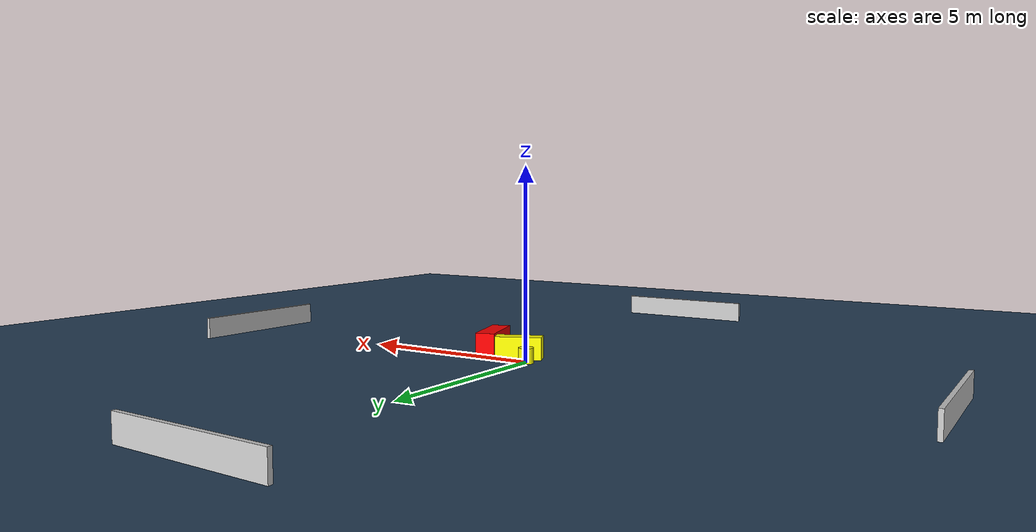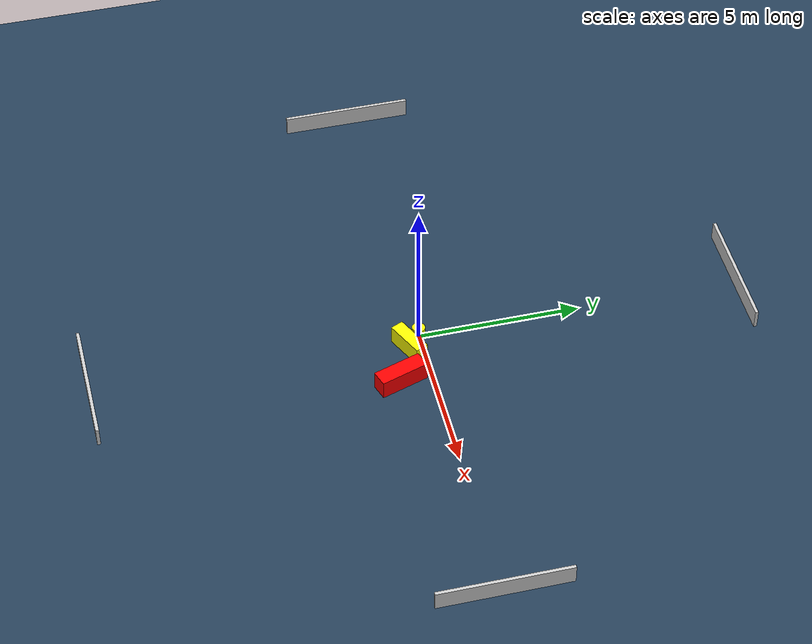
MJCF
<?xml version="1.0" ?>
<mujoco model="generated_environment">
  <option timestep="0.01" integrator="RK4" cone="elliptic"/>
  <default>
    <geom density="1"/>
  </default>
  <asset>
    <texture builtin="gradient" height="3072" name="skybox" rgb1="0.3 0.5 0.7" rgb2="0 0 0" type="skybox" width="512"/>
    <texture builtin="checker" height="300" name="groundplane" rgb1="0.2 0.3 0.4" rgb2="0.1 0.2 0.3" type="2d" width="300"/>
    <material name="groundplane" reflectance="0.2" texrepeat="5 5" texture="groundplane"/>
  </asset>
  <worldbody>
    <light dir="0 0 -1" directional="true" pos="0 0 1.5"/>
    <geom condim="3" friction="0.5 0.005 0.001" material="groundplane" name="floor" pos="0 0 0" size="0 0 0.05" type="plane"/>
    <body name="walls">
      <geom name="wall_1" condim="4" pos="-10.0 0.0 0.3" rgba="0.800000011920929 0.800000011920929 0.800000011920929 1.0" size="0.05 2.0 0.3" type="box"/>
      <geom name="wall_2" condim="4" pos="10.0 0.0 0.3" rgba="0.800000011920929 0.800000011920929 0.800000011920929 1.0" size="0.05 2.0 0.3" type="box"/>
      <geom name="wall_3" condim="4" pos="0.0 -10.0 0.3" rgba="0.800000011920929 0.800000011920929 0.800000011920929 1.0" size="2.0 0.05 0.3" type="box"/>
      <geom name="wall_4" condim="4" pos="0.0 10.0 0.3" rgba="0.800000011920929 0.800000011920929 0.800000011920929 1.0" size="2.0 0.05 0.3" type="box"/>
    </body>
    <body name="robot">
      <joint name="joint_x" type="slide" pos="0 0 0" axis="1 0 0"/>
      <joint name="joint_y" type="slide" pos="0 0 0" axis="0 1 0"/>
      <geom name="robot" type="cylinder" pos="0.0 0.0 0.2" size="0.2 0.2 0.0" mass="5.0" friction="1.0 0.005 0.0001" condim="4" rgba="1.0 1.0 0.0 1.0"/>
    </body>
    <body name="obstacle_1_movable">
      <geom name="obstacle_1_movable" condim="4" pos="0.4781313336959931 -0.3981329802187807 0.3" euler="0 0 204.97792005610955" friction="0.0 0.005 0.001" rgba="1.0 1.0 0.0 1.0" size="0.6141959157324804 0.20526362203193735 0.3" type="box" mass="0.1"/>
      <joint type="free"/>
    </body>
    <body name="obstacle_2_static">
      <geom name="obstacle_2_static" condim="4" pos="1.7003211066470956 -0.9528750604625393 0.3" euler="0 0 18.370562647647475" friction="0.0 0.005 0.001" rgba="1.0 0.0 0.0 1.0" size="0.25707465627618886 0.7605301783997205 0.3" type="box"/>
    </body>
  </worldbody>
  <actuator>
    <motor name="actuator_x" joint="joint_x" gear="1" ctrlrange="-1 1"/>
    <motor name="actuator_y" joint="joint_y" gear="1" ctrlrange="-1 1"/>
  </actuator>
</mujoco>
